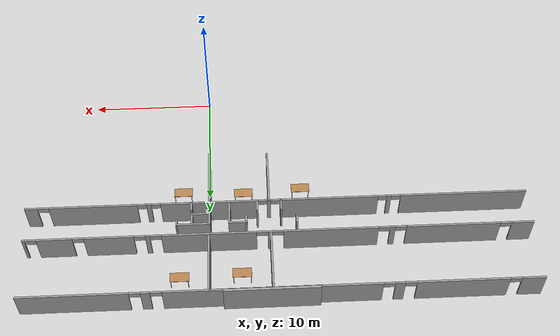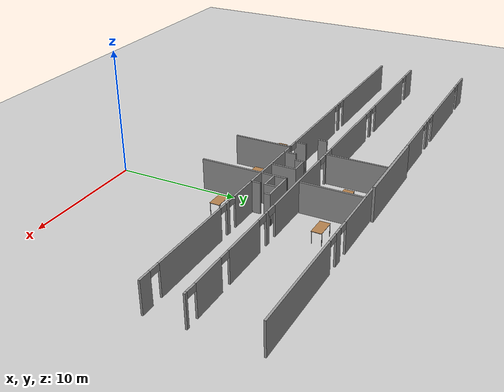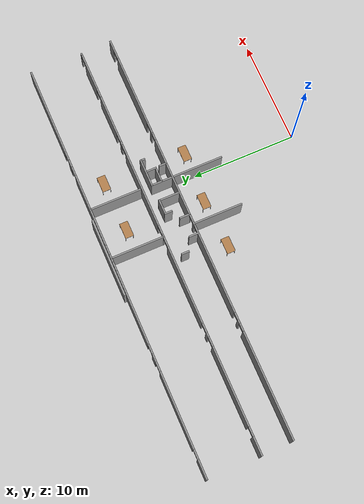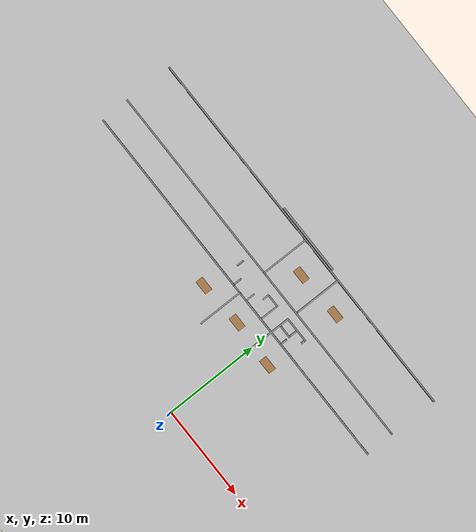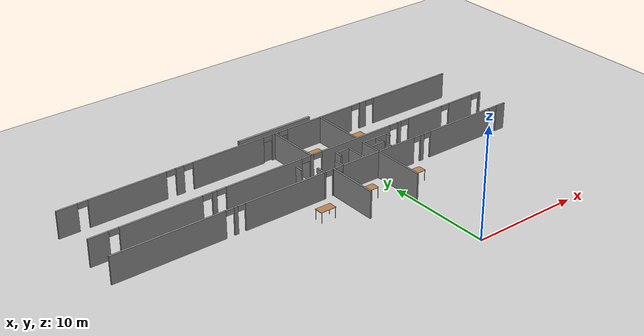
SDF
<sdf version="1.6">
 <world name="default">
  <model name="ground_plane">
   <static>1</static>
   <link name="link">
    <collision name="collision">
     <geometry><plane><normal>0 0 1</normal><size>100 100</size></plane></geometry>
     <surface><friction><ode><mu>100</mu><mu2>50</mu2></ode></friction></surface>
    </collision>
    <visual name="visual">
     <cast_shadows>0</cast_shadows>
     <geometry><plane><normal>0 0 1</normal><size>100 100</size></plane></geometry>
     <material>
      <script><uri>file://media/materials/scripts/gazebo.material</uri><name>Gazebo/Grey</name></script>
     </material>
    </visual>
   </link>
  </model>
  <model name="fin_se1f1.sdf">
   <pose>1.83798 -2.38449 0.2 0 -0 0</pose>
   <link name="Wall_102">
    <collision name="Wall_102_Collision">
     <geometry><box><size>0.75 0.15 2.5</size></box></geometry>
     <pose>0 0 1.25 0 -0 0</pose>
    </collision>
    <visual name="Wall_102_Visual">
     <pose>0 0 1.25 0 -0 0</pose>
     <geometry><box><size>0.75 0.15 2.5</size></box></geometry>
     <material>
      <script><uri>file://media/materials/scripts/gazebo.material</uri><name>Gazebo/Grey</name></script>
      <ambient>1 1 1 1</ambient>
     </material>
     <meta><layer>0</layer></meta>
    </visual>
    <pose>-8.86395 16.4896 0 0 0 -1.5708</pose>
   </link>
   <link name="Wall_108">
    <collision name="Wall_108_Collision">
     <geometry><box><size>7 0.15 2.5</size></box></geometry>
     <pose>0 0 1.25 0 -0 0</pose>
    </collision>
    <visual name="Wall_108_Visual">
     <pose>0 0 1.25 0 -0 0</pose>
     <geometry><box><size>7 0.15 2.5</size></box></geometry>
     <material>
      <script><uri>file://media/materials/scripts/gazebo.material</uri><name>Gazebo/Grey</name></script>
      <ambient>1 1 1 1</ambient>
     </material>
     <meta><layer>0</layer></meta>
    </visual>
    <pose>-1.87432 13.2994 0 0 -0 1.5708</pose>
   </link>
   <link name="Wall_109">
    <collision name="Wall_109_Collision">
     <geometry><box><size>2.75 0.15 2.5</size></box></geometry>
     <pose>0 0 1.25 0 -0 0</pose>
    </collision>
    <visual name="Wall_109_Visual">
     <pose>0 0 1.25 0 -0 0</pose>
     <geometry><box><size>2.75 0.15 2.5</size></box></geometry>
     <material>
      <script><uri>file://media/materials/scripts/gazebo.material</uri><name>Gazebo/Grey</name></script>
      <ambient>1 1 1 1</ambient>
     </material>
     <meta><layer>0</layer></meta>
    </visual>
    <pose>-0.574318 16.7244 0 0 -0 0</pose>
   </link>
   <link name="Wall_110">
    <collision name="Wall_110_Collision">
     <geometry><box><size>0.5 0.15 2.5</size></box></geometry>
     <pose>0 0 1.25 0 -0 0</pose>
    </collision>
    <visual name="Wall_110_Visual">
     <pose>0 0 1.25 0 -0 0</pose>
     <geometry><box><size>0.5 0.15 2.5</size></box></geometry>
     <material>
      <script><uri>file://media/materials/scripts/gazebo.material</uri><name>Gazebo/Grey</name></script>
      <ambient>1 1 1 1</ambient>
     </material>
     <meta><layer>0</layer></meta>
    </visual>
    <pose>0.725682 16.5494 0 0 0 -1.5708</pose>
   </link>
   <link name="Wall_112">
    <collision name="Wall_112_Collision">
     <geometry><box><size>4.75 0.15 2.5</size></box></geometry>
     <pose>0 0 1.25 0 -0 0</pose>
    </collision>
    <visual name="Wall_112_Visual">
     <pose>0 0 1.25 0 -0 0</pose>
     <geometry><box><size>4.75 0.15 2.5</size></box></geometry>
     <material>
      <script><uri>file://media/materials/scripts/gazebo.material</uri><name>Gazebo/Grey</name></script>
      <ambient>1 1 1 1</ambient>
     </material>
     <meta><layer>0</layer></meta>
    </visual>
    <pose>-6.68954 12.3361 0 0 0 -1.5708</pose>
   </link>
   <link name="Wall_132">
    <collision name="Wall_132_Collision">
     <geometry><box><size>0.75 0.15 2.5</size></box></geometry>
     <pose>0 0 1.25 0 -0 0</pose>
    </collision>
    <visual name="Wall_132_Visual">
     <pose>0 0 1.25 0 -0 0</pose>
     <geometry><box><size>0.75 0.15 2.5</size></box></geometry>
     <material>
      <script><uri>file://media/materials/scripts/gazebo.material</uri><name>Gazebo/Grey</name></script>
      <ambient>1 1 1 1</ambient>
     </material>
     <meta><layer>0</layer></meta>
    </visual>
    <pose>-4.81696 16.3807 0 0 -0 1.5708</pose>
   </link>
   <link name="Wall_133">
    <collision name="Wall_133_Collision">
     <geometry><box><size>1.5 0.15 2.5</size></box></geometry>
     <pose>0 0 1.25 0 -0 0</pose>
    </collision>
    <visual name="Wall_133_Visual">
     <pose>0 0 1.25 0 -0 0</pose>
     <geometry><box><size>1.5 0.15 2.5</size></box></geometry>
     <material>
      <script><uri>file://media/materials/scripts/gazebo.material</uri><name>Gazebo/Grey</name></script>
      <ambient>1 1 1 1</ambient>
     </material>
     <meta><layer>0</layer></meta>
    </visual>
    <pose>-4.14196 16.6807 0 0 -0 0</pose>
   </link>
   <link name="Wall_134">
    <collision name="Wall_134_Collision">
     <geometry><box><size>2 0.15 2.5</size></box></geometry>
     <pose>0 0 1.25 0 -0 0</pose>
    </collision>
    <visual name="Wall_134_Visual">
     <pose>0 0 1.25 0 -0 0</pose>
     <geometry><box><size>2 0.15 2.5</size></box></geometry>
     <material>
      <script><uri>file://media/materials/scripts/gazebo.material</uri><name>Gazebo/Grey</name></script>
      <ambient>1 1 1 1</ambient>
     </material>
     <meta><layer>0</layer></meta>
    </visual>
    <pose>-3.46696 15.7557 0 0 0 -1.5708</pose>
   </link>
   <link name="Wall_136">
    <collision name="Wall_136_Collision">
     <geometry><box><size>1 0.15 2.5</size></box></geometry>
     <pose>0 0 1.25 0 -0 0</pose>
    </collision>
    <visual name="Wall_136_Visual">
     <pose>0 0 1.25 0 -0 0</pose>
     <geometry><box><size>1 0.15 2.5</size></box></geometry>
     <material>
      <script><uri>file://media/materials/scripts/gazebo.material</uri><name>Gazebo/Grey</name></script>
      <ambient>1 1 1 1</ambient>
     </material>
     <meta><layer>0</layer></meta>
    </visual>
    <pose>-5.7265 15.1681 0 0 -0 1.5708</pose>
   </link>
   <link name="Wall_138">
    <collision name="Wall_138_Collision">
     <geometry><box><size>1 0.15 2.5</size></box></geometry>
     <pose>0 0 1.25 0 -0 0</pose>
    </collision>
    <visual name="Wall_138_Visual">
     <pose>0 0 1.25 0 -0 0</pose>
     <geometry><box><size>1 0.15 2.5</size></box></geometry>
     <material>
      <script><uri>file://media/materials/scripts/gazebo.material</uri><name>Gazebo/Grey</name></script>
      <ambient>1 1 1 1</ambient>
     </material>
     <meta><layer>0</layer></meta>
    </visual>
    <pose>-7.65259 15.1146 0 0 -0 1.5708</pose>
   </link>
   <link name="Wall_150">
    <collision name="Wall_150_Collision">
     <geometry><box><size>1.5 0.15 2.5</size></box></geometry>
     <pose>0 0 1.25 0 -0 0</pose>
    </collision>
    <visual name="Wall_150_Visual">
     <pose>0 0 1.25 0 -0 0</pose>
     <geometry><box><size>1.5 0.15 2.5</size></box></geometry>
     <material>
      <script><uri>file://media/materials/scripts/gazebo.material</uri><name>Gazebo/Grey</name></script>
      <ambient>1 1 1 1</ambient>
     </material>
     <meta><layer>0</layer></meta>
    </visual>
    <pose>-1.14582 15.7597 0 0 -0 0</pose>
   </link>
   <link name="Wall_151">
    <collision name="Wall_151_Collision">
     <geometry><box><size>1 0.15 2.5</size></box></geometry>
     <pose>0 0 1.25 0 -0 0</pose>
    </collision>
    <visual name="Wall_151_Visual">
     <pose>0 0 1.25 0 -0 0</pose>
     <geometry><box><size>1 0.15 2.5</size></box></geometry>
     <material>
      <script><uri>file://media/materials/scripts/gazebo.material</uri><name>Gazebo/Grey</name></script>
      <ambient>1 1 1 1</ambient>
     </material>
     <meta><layer>0</layer></meta>
    </visual>
    <pose>-0.470815 16.1847 0 0 -0 1.5708</pose>
   </link>
   <link name="Wall_153">
    <collision name="Wall_153_Collision">
     <geometry><box><size>0.75 0.15 2.5</size></box></geometry>
     <pose>0 0 1.25 0 -0 0</pose>
    </collision>
    <visual name="Wall_153_Visual">
     <pose>0 0 1.25 0 -0 0</pose>
     <geometry><box><size>0.75 0.15 2.5</size></box></geometry>
     <material>
      <script><uri>file://media/materials/scripts/gazebo.material</uri><name>Gazebo/Grey</name></script>
      <ambient>1 1 1 1</ambient>
     </material>
     <meta><layer>0</layer></meta>
    </visual>
    <pose>-0.42975 15.0316 0 0 0 -1.5708</pose>
   </link>
   <link name="Wall_22">
    <pose>-7.37457 22.7246 0 0 -0 3.14159</pose>
    <visual name="Wall_22_Visual_0">
     <pose>-15.9484 0 1.25 0 -0 0</pose>
     <geometry><box><size>8.60329 0.15 2.5</size></box></geometry>
     <material>
      <script><uri>file://media/materials/scripts/gazebo.material</uri><name>Gazebo/Grey</name></script>
      <ambient>1 1 1 1</ambient>
     </material>
     <meta><layer>0</layer></meta>
    </visual>
    <collision name="Wall_22_Collision_0">
     <geometry><box><size>8.60329 0.15 2.5</size></box></geometry>
     <pose>-15.9484 0 1.25 0 -0 0</pose>
    </collision>
    <visual name="Wall_22_Visual_1">
     <pose>-10.3821 0 1.25 0 -0 0</pose>
     <geometry><box><size>0.729199 0.15 2.5</size></box></geometry>
     <material>
      <script><uri>file://media/materials/scripts/gazebo.material</uri><name>Gazebo/Grey</name></script>
      <ambient>1 1 1 1</ambient>
     </material>
     <meta><layer>0</layer></meta>
    </visual>
    <collision name="Wall_22_Collision_1">
     <geometry><box><size>0.729199 0.15 2.5</size></box></geometry>
     <pose>-10.3821 0 1.25 0 -0 0</pose>
    </collision>
    <visual name="Wall_22_Visual_2">
     <pose>-5.52468 0 1.25 0 -0 0</pose>
     <geometry><box><size>7.18566 0.15 2.5</size></box></geometry>
     <material>
      <script><uri>file://media/materials/scripts/gazebo.material</uri><name>Gazebo/Grey</name></script>
      <ambient>1 1 1 1</ambient>
     </material>
     <meta><layer>0</layer></meta>
    </visual>
    <collision name="Wall_22_Collision_2">
     <geometry><box><size>7.18566 0.15 2.5</size></box></geometry>
     <pose>-5.52468 0 1.25 0 -0 0</pose>
    </collision>
    <visual name="Wall_22_Visual_3">
     <pose>-0.657198 0 1.25 0 -0 0</pose>
     <geometry><box><size>0.749313 0.15 2.5</size></box></geometry>
     <material>
      <script><uri>file://media/materials/scripts/gazebo.material</uri><name>Gazebo/Grey</name></script>
      <ambient>1 1 1 1</ambient>
     </material>
     <meta><layer>0</layer></meta>
    </visual>
    <collision name="Wall_22_Collision_3">
     <geometry><box><size>0.749313 0.15 2.5</size></box></geometry>
     <pose>-0.657198 0 1.25 0 -0 0</pose>
    </collision>
    <visual name="Wall_22_Visual_4">
     <pose>4.19017 0 1.25 0 -0 0</pose>
     <geometry><box><size>7.14543 0.15 2.5</size></box></geometry>
     <material>
      <script><uri>file://media/materials/scripts/gazebo.material</uri><name>Gazebo/Grey</name></script>
      <ambient>1 1 1 1</ambient>
     </material>
     <meta><layer>0</layer></meta>
    </visual>
    <collision name="Wall_22_Collision_4">
     <geometry><box><size>7.14543 0.15 2.5</size></box></geometry>
     <pose>4.19017 0 1.25 0 -0 0</pose>
    </collision>
    <visual name="Wall_22_Visual_5">
     <pose>9.0476 0 1.25 0 -0 0</pose>
     <geometry><box><size>0.769426 0.15 2.5</size></box></geometry>
     <material>
      <script><uri>file://media/materials/scripts/gazebo.material</uri><name>Gazebo/Grey</name></script>
      <ambient>1 1 1 1</ambient>
     </material>
     <meta><layer>0</layer></meta>
    </visual>
    <collision name="Wall_22_Collision_5">
     <geometry><box><size>0.769426 0.15 2.5</size></box></geometry>
     <pose>9.0476 0 1.25 0 -0 0</pose>
    </collision>
    <visual name="Wall_22_Visual_6">
     <pose>13.9151 0 1.25 0 -0 0</pose>
     <geometry><box><size>7.16554 0.15 2.5</size></box></geometry>
     <material>
      <script><uri>file://media/materials/scripts/gazebo.material</uri><name>Gazebo/Grey</name></script>
      <ambient>1 1 1 1</ambient>
     </material>
     <meta><layer>0</layer></meta>
    </visual>
    <collision name="Wall_22_Collision_6">
     <geometry><box><size>7.16554 0.15 2.5</size></box></geometry>
     <pose>13.9151 0 1.25 0 -0 0</pose>
    </collision>
    <visual name="Wall_22_Visual_7">
     <pose>19.3239 0 1.25 0 -0 0</pose>
     <geometry><box><size>1.85214 0.15 2.5</size></box></geometry>
     <material>
      <script><uri>file://media/materials/scripts/gazebo.material</uri><name>Gazebo/Grey</name></script>
      <ambient>1 1 1 1</ambient>
     </material>
     <meta><layer>0</layer></meta>
    </visual>
    <collision name="Wall_22_Collision_7">
     <geometry><box><size>1.85214 0.15 2.5</size></box></geometry>
     <pose>19.3239 0 1.25 0 -0 0</pose>
    </collision>
    <visual name="Wall_22_Visual_8">
     <pose>-11.1967 0 2.25 0 -0 0</pose>
     <geometry><box><size>0.9 0.15 0.5</size></box></geometry>
     <material>
      <script><uri>file://media/materials/scripts/gazebo.material</uri><name>Gazebo/Grey</name></script>
      <ambient>1 1 1 1</ambient>
     </material>
     <meta><layer>0</layer></meta>
    </visual>
    <collision name="Wall_22_Collision_8">
     <geometry><box><size>0.9 0.15 0.5</size></box></geometry>
     <pose>-11.1967 0 2.25 0 -0 0</pose>
    </collision>
    <visual name="Wall_22_Visual_9">
     <pose>-9.56751 0 2.25 0 -0 0</pose>
     <geometry><box><size>0.9 0.15 0.5</size></box></geometry>
     <material>
      <script><uri>file://media/materials/scripts/gazebo.material</uri><name>Gazebo/Grey</name></script>
      <ambient>1 1 1 1</ambient>
     </material>
     <meta><layer>0</layer></meta>
    </visual>
    <collision name="Wall_22_Collision_9">
     <geometry><box><size>0.9 0.15 0.5</size></box></geometry>
     <pose>-9.56751 0 2.25 0 -0 0</pose>
    </collision>
    <visual name="Wall_22_Visual_10">
     <pose>-1.48185 0 2.25 0 -0 0</pose>
     <geometry><box><size>0.9 0.15 0.5</size></box></geometry>
     <material>
      <script><uri>file://media/materials/scripts/gazebo.material</uri><name>Gazebo/Grey</name></script>
      <ambient>1 1 1 1</ambient>
     </material>
     <meta><layer>0</layer></meta>
    </visual>
    <collision name="Wall_22_Collision_10">
     <geometry><box><size>0.9 0.15 0.5</size></box></geometry>
     <pose>-1.48185 0 2.25 0 -0 0</pose>
    </collision>
    <visual name="Wall_22_Visual_11">
     <pose>0.167459 0 2.25 0 -0 0</pose>
     <geometry><box><size>0.9 0.15 0.5</size></box></geometry>
     <material>
      <script><uri>file://media/materials/scripts/gazebo.material</uri><name>Gazebo/Grey</name></script>
      <ambient>1 1 1 1</ambient>
     </material>
     <meta><layer>0</layer></meta>
    </visual>
    <collision name="Wall_22_Collision_11">
     <geometry><box><size>0.9 0.15 0.5</size></box></geometry>
     <pose>0.167459 0 2.25 0 -0 0</pose>
    </collision>
    <visual name="Wall_22_Visual_12">
     <pose>8.21289 0 2.25 0 -0 0</pose>
     <geometry><box><size>0.9 0.15 0.5</size></box></geometry>
     <material>
      <script><uri>file://media/materials/scripts/gazebo.material</uri><name>Gazebo/Grey</name></script>
      <ambient>1 1 1 1</ambient>
     </material>
     <meta><layer>0</layer></meta>
    </visual>
    <collision name="Wall_22_Collision_12">
     <geometry><box><size>0.9 0.15 0.5</size></box></geometry>
     <pose>8.21289 0 2.25 0 -0 0</pose>
    </collision>
    <visual name="Wall_22_Visual_13">
     <pose>9.88231 0 2.25 0 -0 0</pose>
     <geometry><box><size>0.9 0.15 0.5</size></box></geometry>
     <material>
      <script><uri>file://media/materials/scripts/gazebo.material</uri><name>Gazebo/Grey</name></script>
      <ambient>1 1 1 1</ambient>
     </material>
     <meta><layer>0</layer></meta>
    </visual>
    <collision name="Wall_22_Collision_13">
     <geometry><box><size>0.9 0.15 0.5</size></box></geometry>
     <pose>9.88231 0 2.25 0 -0 0</pose>
    </collision>
    <visual name="Wall_22_Visual_14">
     <pose>17.9479 0 2.25 0 -0 0</pose>
     <geometry><box><size>0.9 0.15 0.5</size></box></geometry>
     <material>
      <script><uri>file://media/materials/scripts/gazebo.material</uri><name>Gazebo/Grey</name></script>
      <ambient>1 1 1 1</ambient>
     </material>
     <meta><layer>0</layer></meta>
    </visual>
    <collision name="Wall_22_Collision_14">
     <geometry><box><size>0.9 0.15 0.5</size></box></geometry>
     <pose>17.9479 0 2.25 0 -0 0</pose>
    </collision>
   </link>
   <link name="Wall_69">
    <pose>-7.41686 17.6737 0 0 -0 0</pose>
    <visual name="Wall_69_Visual_0">
     <pose>-19.3631 0 1.25 0 -0 0</pose>
     <geometry><box><size>1.77375 0.15 2.5</size></box></geometry>
     <material>
      <script><uri>file://media/materials/scripts/gazebo.material</uri><name>Gazebo/Grey</name></script>
      <ambient>1 1 1 1</ambient>
     </material>
     <meta><layer>0</layer></meta>
    </visual>
    <collision name="Wall_69_Collision_0">
     <geometry><box><size>1.77375 0.15 2.5</size></box></geometry>
     <pose>-19.3631 0 1.25 0 -0 0</pose>
    </collision>
    <visual name="Wall_69_Visual_1">
     <pose>-13.8326 0 1.25 0 -0 0</pose>
     <geometry><box><size>7.48736 0.15 2.5</size></box></geometry>
     <material>
      <script><uri>file://media/materials/scripts/gazebo.material</uri><name>Gazebo/Grey</name></script>
      <ambient>1 1 1 1</ambient>
     </material>
     <meta><layer>0</layer></meta>
    </visual>
    <collision name="Wall_69_Collision_1">
     <geometry><box><size>7.48736 0.15 2.5</size></box></geometry>
     <pose>-13.8326 0 1.25 0 -0 0</pose>
    </collision>
    <visual name="Wall_69_Visual_2">
     <pose>-8.97514 0 1.25 0 -0 0</pose>
     <geometry><box><size>0.427496 0.15 2.5</size></box></geometry>
     <material>
      <script><uri>file://media/materials/scripts/gazebo.material</uri><name>Gazebo/Grey</name></script>
      <ambient>1 1 1 1</ambient>
     </material>
     <meta><layer>0</layer></meta>
    </visual>
    <collision name="Wall_69_Collision_2">
     <geometry><box><size>0.427496 0.15 2.5</size></box></geometry>
     <pose>-8.97514 0 1.25 0 -0 0</pose>
    </collision>
    <visual name="Wall_69_Visual_3">
     <pose>-4.08754 0 1.25 0 -0 0</pose>
     <geometry><box><size>7.5477 0.15 2.5</size></box></geometry>
     <material>
      <script><uri>file://media/materials/scripts/gazebo.material</uri><name>Gazebo/Grey</name></script>
      <ambient>1 1 1 1</ambient>
     </material>
     <meta><layer>0</layer></meta>
    </visual>
    <collision name="Wall_69_Collision_3">
     <geometry><box><size>7.5477 0.15 2.5</size></box></geometry>
     <pose>-4.08754 0 1.25 0 -0 0</pose>
    </collision>
    <visual name="Wall_69_Visual_4">
     <pose>0.749771 0 1.25 0 -0 0</pose>
     <geometry><box><size>0.326928 0.15 2.5</size></box></geometry>
     <material>
      <script><uri>file://media/materials/scripts/gazebo.material</uri><name>Gazebo/Grey</name></script>
      <ambient>1 1 1 1</ambient>
     </material>
     <meta><layer>0</layer></meta>
    </visual>
    <collision name="Wall_69_Collision_4">
     <geometry><box><size>0.326928 0.15 2.5</size></box></geometry>
     <pose>0.749771 0 1.25 0 -0 0</pose>
    </collision>
    <visual name="Wall_69_Visual_5">
     <pose>5.56697 0 1.25 0 -0 0</pose>
     <geometry><box><size>7.50747 0.15 2.5</size></box></geometry>
     <material>
      <script><uri>file://media/materials/scripts/gazebo.material</uri><name>Gazebo/Grey</name></script>
      <ambient>1 1 1 1</ambient>
     </material>
     <meta><layer>0</layer></meta>
    </visual>
    <collision name="Wall_69_Collision_5">
     <geometry><box><size>7.50747 0.15 2.5</size></box></geometry>
     <pose>5.56697 0 1.25 0 -0 0</pose>
    </collision>
    <visual name="Wall_69_Visual_6">
     <pose>10.4043 0 1.25 0 -0 0</pose>
     <geometry><box><size>0.367155 0.15 2.5</size></box></geometry>
     <material>
      <script><uri>file://media/materials/scripts/gazebo.material</uri><name>Gazebo/Grey</name></script>
      <ambient>1 1 1 1</ambient>
     </material>
     <meta><layer>0</layer></meta>
    </visual>
    <collision name="Wall_69_Collision_6">
     <geometry><box><size>0.367155 0.15 2.5</size></box></geometry>
     <pose>10.4043 0 1.25 0 -0 0</pose>
    </collision>
    <visual name="Wall_69_Visual_7">
     <pose>13.4515 0 1.25 0 -0 0</pose>
     <geometry><box><size>3.92726 0.15 2.5</size></box></geometry>
     <material>
      <script><uri>file://media/materials/scripts/gazebo.material</uri><name>Gazebo/Grey</name></script>
      <ambient>1 1 1 1</ambient>
     </material>
     <meta><layer>0</layer></meta>
    </visual>
    <collision name="Wall_69_Collision_7">
     <geometry><box><size>3.92726 0.15 2.5</size></box></geometry>
     <pose>13.4515 0 1.25 0 -0 0</pose>
    </collision>
    <visual name="Wall_69_Visual_8">
     <pose>17.7256 0 1.25 0 -0 0</pose>
     <geometry><box><size>2.82101 0.15 2.5</size></box></geometry>
     <material>
      <script><uri>file://media/materials/scripts/gazebo.material</uri><name>Gazebo/Grey</name></script>
      <ambient>1 1 1 1</ambient>
     </material>
     <meta><layer>0</layer></meta>
    </visual>
    <collision name="Wall_69_Collision_8">
     <geometry><box><size>2.82101 0.15 2.5</size></box></geometry>
     <pose>17.7256 0 1.25 0 -0 0</pose>
    </collision>
    <visual name="Wall_69_Visual_9">
     <pose>20.1431 0 1.25 0 -0 0</pose>
     <geometry><box><size>0.21387 0.15 2.5</size></box></geometry>
     <material>
      <script><uri>file://media/materials/scripts/gazebo.material</uri><name>Gazebo/Grey</name></script>
      <ambient>1 1 1 1</ambient>
     </material>
     <meta><layer>0</layer></meta>
    </visual>
    <collision name="Wall_69_Collision_9">
     <geometry><box><size>0.21387 0.15 2.5</size></box></geometry>
     <pose>20.1431 0 1.25 0 -0 0</pose>
    </collision>
    <visual name="Wall_69_Visual_10">
     <pose>-18.0262 0 2.25 0 -0 0</pose>
     <geometry><box><size>0.9 0.15 0.5</size></box></geometry>
     <material>
      <script><uri>file://media/materials/scripts/gazebo.material</uri><name>Gazebo/Grey</name></script>
      <ambient>1 1 1 1</ambient>
     </material>
     <meta><layer>0</layer></meta>
    </visual>
    <collision name="Wall_69_Collision_10">
     <geometry><box><size>0.9 0.15 0.5</size></box></geometry>
     <pose>-18.0262 0 2.25 0 -0 0</pose>
    </collision>
    <visual name="Wall_69_Visual_11">
     <pose>-9.63889 0 2.25 0 -0 0</pose>
     <geometry><box><size>0.9 0.15 0.5</size></box></geometry>
     <material>
      <script><uri>file://media/materials/scripts/gazebo.material</uri><name>Gazebo/Grey</name></script>
      <ambient>1 1 1 1</ambient>
     </material>
     <meta><layer>0</layer></meta>
    </visual>
    <collision name="Wall_69_Collision_11">
     <geometry><box><size>0.9 0.15 0.5</size></box></geometry>
     <pose>-9.63889 0 2.25 0 -0 0</pose>
    </collision>
    <visual name="Wall_69_Visual_12">
     <pose>-8.31139 0 2.25 0 -0 0</pose>
     <geometry><box><size>0.9 0.15 0.5</size></box></geometry>
     <material>
      <script><uri>file://media/materials/scripts/gazebo.material</uri><name>Gazebo/Grey</name></script>
      <ambient>1 1 1 1</ambient>
     </material>
     <meta><layer>0</layer></meta>
    </visual>
    <collision name="Wall_69_Collision_12">
     <geometry><box><size>0.9 0.15 0.5</size></box></geometry>
     <pose>-8.31139 0 2.25 0 -0 0</pose>
    </collision>
    <visual name="Wall_69_Visual_13">
     <pose>0.136307 0 2.25 0 -0 0</pose>
     <geometry><box><size>0.9 0.15 0.5</size></box></geometry>
     <material>
      <script><uri>file://media/materials/scripts/gazebo.material</uri><name>Gazebo/Grey</name></script>
      <ambient>1 1 1 1</ambient>
     </material>
     <meta><layer>0</layer></meta>
    </visual>
    <collision name="Wall_69_Collision_13">
     <geometry><box><size>0.9 0.15 0.5</size></box></geometry>
     <pose>0.136307 0 2.25 0 -0 0</pose>
    </collision>
    <visual name="Wall_69_Visual_14">
     <pose>1.36323 0 2.25 0 -0 0</pose>
     <geometry><box><size>0.9 0.15 0.5</size></box></geometry>
     <material>
      <script><uri>file://media/materials/scripts/gazebo.material</uri><name>Gazebo/Grey</name></script>
      <ambient>1 1 1 1</ambient>
     </material>
     <meta><layer>0</layer></meta>
    </visual>
    <collision name="Wall_69_Collision_14">
     <geometry><box><size>0.9 0.15 0.5</size></box></geometry>
     <pose>1.36323 0 2.25 0 -0 0</pose>
    </collision>
    <visual name="Wall_69_Visual_15">
     <pose>9.77071 0 2.25 0 -0 0</pose>
     <geometry><box><size>0.9 0.15 0.5</size></box></geometry>
     <material>
      <script><uri>file://media/materials/scripts/gazebo.material</uri><name>Gazebo/Grey</name></script>
      <ambient>1 1 1 1</ambient>
     </material>
     <meta><layer>0</layer></meta>
    </visual>
    <collision name="Wall_69_Collision_15">
     <geometry><box><size>0.9 0.15 0.5</size></box></geometry>
     <pose>9.77071 0 2.25 0 -0 0</pose>
    </collision>
    <visual name="Wall_69_Visual_16">
     <pose>11.0379 0 2.25 0 -0 0</pose>
     <geometry><box><size>0.9 0.15 0.5</size></box></geometry>
     <material>
      <script><uri>file://media/materials/scripts/gazebo.material</uri><name>Gazebo/Grey</name></script>
      <ambient>1 1 1 1</ambient>
     </material>
     <meta><layer>0</layer></meta>
    </visual>
    <collision name="Wall_69_Collision_16">
     <geometry><box><size>0.9 0.15 0.5</size></box></geometry>
     <pose>11.0379 0 2.25 0 -0 0</pose>
    </collision>
    <visual name="Wall_69_Visual_17">
     <pose>15.8651 0 2.25 0 -0 0</pose>
     <geometry><box><size>0.9 0.15 0.5</size></box></geometry>
     <material>
      <script><uri>file://media/materials/scripts/gazebo.material</uri><name>Gazebo/Grey</name></script>
      <ambient>1 1 1 1</ambient>
     </material>
     <meta><layer>0</layer></meta>
    </visual>
    <collision name="Wall_69_Collision_17">
     <geometry><box><size>0.9 0.15 0.5</size></box></geometry>
     <pose>15.8651 0 2.25 0 -0 0</pose>
    </collision>
    <visual name="Wall_69_Visual_18">
     <pose>19.5861 0 2.25 0 -0 0</pose>
     <geometry><box><size>0.9 0.15 0.5</size></box></geometry>
     <material>
      <script><uri>file://media/materials/scripts/gazebo.material</uri><name>Gazebo/Grey</name></script>
      <ambient>1 1 1 1</ambient>
     </material>
     <meta><layer>0</layer></meta>
    </visual>
    <collision name="Wall_69_Collision_18">
     <geometry><box><size>0.9 0.15 0.5</size></box></geometry>
     <pose>19.5861 0 2.25 0 -0 0</pose>
    </collision>
   </link>
   <link name="Wall_78">
    <collision name="Wall_78_Collision">
     <geometry><box><size>5 0.15 2.5</size></box></geometry>
     <pose>0 0 1.25 0 -0 0</pose>
    </collision>
    <visual name="Wall_78_Visual">
     <pose>0 0 1.25 0 -0 0</pose>
     <geometry><box><size>5 0.15 2.5</size></box></geometry>
     <material>
      <script><uri>file://media/materials/scripts/gazebo.material</uri><name>Gazebo/Grey</name></script>
      <ambient>1 1 1 1</ambient>
     </material>
     <meta><layer>0</layer></meta>
    </visual>
    <pose>-1.81168 20.294 0 0 0 -1.5708</pose>
   </link>
   <link name="Wall_80">
    <collision name="Wall_80_Collision">
     <geometry><box><size>5 0.15 2.5</size></box></geometry>
     <pose>0 0 1.25 0 -0 0</pose>
    </collision>
    <visual name="Wall_80_Visual">
     <pose>0 0 1.25 0 -0 0</pose>
     <geometry><box><size>5 0.15 2.5</size></box></geometry>
     <material>
      <script><uri>file://media/materials/scripts/gazebo.material</uri><name>Gazebo/Grey</name></script>
      <ambient>1 1 1 1</ambient>
     </material>
     <meta><layer>0</layer></meta>
    </visual>
    <pose>-6.73391 20.1709 0 0 0 -1.5708</pose>
   </link>
   <link name="Wall_88">
    <pose>-7.32702 14.6896 0 0 -0 0</pose>
    <visual name="Wall_88_Visual_0">
     <pose>-15.144 0 1.25 0 -0 0</pose>
     <geometry><box><size>10.2121 0.15 2.5</size></box></geometry>
     <material>
      <script><uri>file://media/materials/scripts/gazebo.material</uri><name>Gazebo/Grey</name></script>
      <ambient>1 1 1 1</ambient>
     </material>
     <meta><layer>0</layer></meta>
    </visual>
    <collision name="Wall_88_Collision_0">
     <geometry><box><size>10.2121 0.15 2.5</size></box></geometry>
     <pose>-15.144 0 1.25 0 -0 0</pose>
    </collision>
    <visual name="Wall_88_Visual_1">
     <pose>-9.0851 0 1.25 0 -0 0</pose>
     <geometry><box><size>0.347043 0.15 2.5</size></box></geometry>
     <material>
      <script><uri>file://media/materials/scripts/gazebo.material</uri><name>Gazebo/Grey</name></script>
      <ambient>1 1 1 1</ambient>
     </material>
     <meta><layer>0</layer></meta>
    </visual>
    <collision name="Wall_88_Collision_1">
     <geometry><box><size>0.347043 0.15 2.5</size></box></geometry>
     <pose>-9.0851 0 1.25 0 -0 0</pose>
    </collision>
    <visual name="Wall_88_Visual_2">
     <pose>-4.24778 0 1.25 0 -0 0</pose>
     <geometry><box><size>7.92986 0.15 2.5</size></box></geometry>
     <material>
      <script><uri>file://media/materials/scripts/gazebo.material</uri><name>Gazebo/Grey</name></script>
      <ambient>1 1 1 1</ambient>
     </material>
     <meta><layer>0</layer></meta>
    </visual>
    <collision name="Wall_88_Collision_2">
     <geometry><box><size>7.92986 0.15 2.5</size></box></geometry>
     <pose>-4.24778 0 1.25 0 -0 0</pose>
    </collision>
    <visual name="Wall_88_Visual_3">
     <pose>0.644846 0 1.25 0 -0 0</pose>
     <geometry><box><size>0.296758 0.15 2.5</size></box></geometry>
     <material>
      <script><uri>file://media/materials/scripts/gazebo.material</uri><name>Gazebo/Grey</name></script>
      <ambient>1 1 1 1</ambient>
     </material>
     <meta><layer>0</layer></meta>
    </visual>
    <collision name="Wall_88_Collision_3">
     <geometry><box><size>0.296758 0.15 2.5</size></box></geometry>
     <pose>0.644846 0 1.25 0 -0 0</pose>
    </collision>
    <visual name="Wall_88_Visual_4">
     <pose>5.45199 0 1.25 0 -0 0</pose>
     <geometry><box><size>7.83935 0.15 2.5</size></box></geometry>
     <material>
      <script><uri>file://media/materials/scripts/gazebo.material</uri><name>Gazebo/Grey</name></script>
      <ambient>1 1 1 1</ambient>
     </material>
     <meta><layer>0</layer></meta>
    </visual>
    <collision name="Wall_88_Collision_4">
     <geometry><box><size>7.83935 0.15 2.5</size></box></geometry>
     <pose>5.45199 0 1.25 0 -0 0</pose>
    </collision>
    <visual name="Wall_88_Visual_5">
     <pose>10.3044 0 1.25 0 -0 0</pose>
     <geometry><box><size>0.387269 0.15 2.5</size></box></geometry>
     <material>
      <script><uri>file://media/materials/scripts/gazebo.material</uri><name>Gazebo/Grey</name></script>
      <ambient>1 1 1 1</ambient>
     </material>
     <meta><layer>0</layer></meta>
    </visual>
    <collision name="Wall_88_Collision_5">
     <geometry><box><size>0.387269 0.15 2.5</size></box></geometry>
     <pose>10.3044 0 1.25 0 -0 0</pose>
    </collision>
    <visual name="Wall_88_Visual_6">
     <pose>14.7797 0 1.25 0 -0 0</pose>
     <geometry><box><size>7.08509 0.15 2.5</size></box></geometry>
     <material>
      <script><uri>file://media/materials/scripts/gazebo.material</uri><name>Gazebo/Grey</name></script>
      <ambient>1 1 1 1</ambient>
     </material>
     <meta><layer>0</layer></meta>
    </visual>
    <collision name="Wall_88_Collision_6">
     <geometry><box><size>7.08509 0.15 2.5</size></box></geometry>
     <pose>14.7797 0 1.25 0 -0 0</pose>
    </collision>
    <visual name="Wall_88_Visual_7">
     <pose>19.7361 0 1.25 0 -0 0</pose>
     <geometry><box><size>1.0278 0.15 2.5</size></box></geometry>
     <material>
      <script><uri>file://media/materials/scripts/gazebo.material</uri><name>Gazebo/Grey</name></script>
      <ambient>1 1 1 1</ambient>
     </material>
     <meta><layer>0</layer></meta>
    </visual>
    <collision name="Wall_88_Collision_7">
     <geometry><box><size>1.0278 0.15 2.5</size></box></geometry>
     <pose>19.7361 0 1.25 0 -0 0</pose>
    </collision>
    <visual name="Wall_88_Visual_8">
     <pose>-9.64827 0 2.25 0 -0 0</pose>
     <geometry><box><size>0.779319 0.15 0.5</size></box></geometry>
     <material>
      <script><uri>file://media/materials/scripts/gazebo.material</uri><name>Gazebo/Grey</name></script>
      <ambient>1 1 1 1</ambient>
     </material>
     <meta><layer>0</layer></meta>
    </visual>
    <collision name="Wall_88_Collision_8">
     <geometry><box><size>0.779319 0.15 0.5</size></box></geometry>
     <pose>-9.64827 0 2.25 0 -0 0</pose>
    </collision>
    <visual name="Wall_88_Visual_9">
     <pose>-8.56214 0 2.25 0 -0 0</pose>
     <geometry><box><size>0.698864 0.15 0.5</size></box></geometry>
     <material>
      <script><uri>file://media/materials/scripts/gazebo.material</uri><name>Gazebo/Grey</name></script>
      <ambient>1 1 1 1</ambient>
     </material>
     <meta><layer>0</layer></meta>
    </visual>
    <collision name="Wall_88_Collision_9">
     <geometry><box><size>0.698864 0.15 0.5</size></box></geometry>
     <pose>-8.56214 0 2.25 0 -0 0</pose>
    </collision>
    <visual name="Wall_88_Visual_10">
     <pose>0.106808 0 2.25 0 -0 0</pose>
     <geometry><box><size>0.779319 0.15 0.5</size></box></geometry>
     <material>
      <script><uri>file://media/materials/scripts/gazebo.material</uri><name>Gazebo/Grey</name></script>
      <ambient>1 1 1 1</ambient>
     </material>
     <meta><layer>0</layer></meta>
    </visual>
    <collision name="Wall_88_Collision_10">
     <geometry><box><size>0.779319 0.15 0.5</size></box></geometry>
     <pose>0.106808 0 2.25 0 -0 0</pose>
    </collision>
    <visual name="Wall_88_Visual_11">
     <pose>1.16277 0 2.25 0 -0 0</pose>
     <geometry><box><size>0.739091 0.15 0.5</size></box></geometry>
     <material>
      <script><uri>file://media/materials/scripts/gazebo.material</uri><name>Gazebo/Grey</name></script>
      <ambient>1 1 1 1</ambient>
     </material>
     <meta><layer>0</layer></meta>
    </visual>
    <collision name="Wall_88_Collision_11">
     <geometry><box><size>0.739091 0.15 0.5</size></box></geometry>
     <pose>1.16277 0 2.25 0 -0 0</pose>
    </collision>
    <visual name="Wall_88_Visual_12">
     <pose>9.74121 0 2.25 0 -0 0</pose>
     <geometry><box><size>0.739091 0.15 0.5</size></box></geometry>
     <material>
      <script><uri>file://media/materials/scripts/gazebo.material</uri><name>Gazebo/Grey</name></script>
      <ambient>1 1 1 1</ambient>
     </material>
     <meta><layer>0</layer></meta>
    </visual>
    <collision name="Wall_88_Collision_12">
     <geometry><box><size>0.739091 0.15 0.5</size></box></geometry>
     <pose>9.74121 0 2.25 0 -0 0</pose>
    </collision>
    <visual name="Wall_88_Visual_13">
     <pose>10.8676 0 2.25 0 -0 0</pose>
     <geometry><box><size>0.739091 0.15 0.5</size></box></geometry>
     <material>
      <script><uri>file://media/materials/scripts/gazebo.material</uri><name>Gazebo/Grey</name></script>
      <ambient>1 1 1 1</ambient>
     </material>
     <meta><layer>0</layer></meta>
    </visual>
    <collision name="Wall_88_Collision_13">
     <geometry><box><size>0.739091 0.15 0.5</size></box></geometry>
     <pose>10.8676 0 2.25 0 -0 0</pose>
    </collision>
    <visual name="Wall_88_Visual_14">
     <pose>18.7722 0 2.25 0 -0 0</pose>
     <geometry><box><size>0.9 0.15 0.5</size></box></geometry>
     <material>
      <script><uri>file://media/materials/scripts/gazebo.material</uri><name>Gazebo/Grey</name></script>
      <ambient>1 1 1 1</ambient>
     </material>
     <meta><layer>0</layer></meta>
    </visual>
    <collision name="Wall_88_Collision_14">
     <geometry><box><size>0.9 0.15 0.5</size></box></geometry>
     <pose>18.7722 0 2.25 0 -0 0</pose>
    </collision>
   </link>
   <static>1</static>
  </model>
  <model name="table_4">
   <static>1</static>
   <link name="link">
    <collision name="surface">
     <pose>0 0 1 0 -0 0</pose>
     <geometry><box><size>1.5 0.8 0.03</size></box></geometry>
     <surface><friction><ode><mu>0.6</mu><mu2>0.6</mu2></ode></friction></surface>
    </collision>
    <visual name="visual1">
     <pose>0 0 1 0 -0 0</pose>
     <geometry><box><size>1.5 0.8 0.03</size></box></geometry>
     <material>
      <script><uri>file://media/materials/scripts/gazebo.material</uri><name>Gazebo/Wood</name></script>
     </material>
    </visual>
    <collision name="front_left_leg">
     <pose>0.68 0.38 0.5 0 -0 0</pose>
     <geometry><cylinder><radius>0.02</radius><length>1</length></cylinder></geometry>
    </collision>
    <visual name="front_left_leg">
     <pose>0.68 0.38 0.5 0 -0 0</pose>
     <geometry><cylinder><radius>0.02</radius><length>1</length></cylinder></geometry>
     <material>
      <script><uri>file://media/materials/scripts/gazebo.material</uri><name>Gazebo/Grey</name></script>
     </material>
    </visual>
    <collision name="front_right_leg">
     <pose>0.68 -0.38 0.5 0 -0 0</pose>
     <geometry><cylinder><radius>0.02</radius><length>1</length></cylinder></geometry>
    </collision>
    <visual name="front_right_leg">
     <pose>0.68 -0.38 0.5 0 -0 0</pose>
     <geometry><cylinder><radius>0.02</radius><length>1</length></cylinder></geometry>
     <material>
      <script><uri>file://media/materials/scripts/gazebo.material</uri><name>Gazebo/Grey</name></script>
     </material>
    </visual>
    <collision name="back_right_leg">
     <pose>-0.68 -0.38 0.5 0 -0 0</pose>
     <geometry><cylinder><radius>0.02</radius><length>1</length></cylinder></geometry>
    </collision>
    <visual name="back_right_leg">
     <pose>-0.68 -0.38 0.5 0 -0 0</pose>
     <geometry><cylinder><radius>0.02</radius><length>1</length></cylinder></geometry>
     <material>
      <script><uri>file://media/materials/scripts/gazebo.material</uri><name>Gazebo/Grey</name></script>
     </material>
    </visual>
    <collision name="back_left_leg">
     <pose>-0.68 0.38 0.5 0 -0 0</pose>
     <geometry><cylinder><radius>0.02</radius><length>1</length></cylinder></geometry>
    </collision>
    <visual name="back_left_leg">
     <pose>-0.68 0.38 0.5 0 -0 0</pose>
     <geometry><cylinder><radius>0.02</radius><length>1</length></cylinder></geometry>
     <material>
      <script><uri>file://media/materials/scripts/gazebo.material</uri><name>Gazebo/Grey</name></script>
     </material>
    </visual>
   </link>
   <pose>-7.5086 10.0383 0 0 -0 0</pose>
  </model>
  <model name="table_6">
   <static>1</static>
   <link name="link">
    <collision name="surface">
     <pose>0 0 1 0 -0 0</pose>
     <geometry><box><size>1.5 0.8 0.03</size></box></geometry>
     <surface><friction><ode><mu>0.6</mu><mu2>0.6</mu2></ode></friction></surface>
    </collision>
    <visual name="visual1">
     <pose>0 0 1 0 -0 0</pose>
     <geometry><box><size>1.5 0.8 0.03</size></box></geometry>
     <material>
      <script><uri>file://media/materials/scripts/gazebo.material</uri><name>Gazebo/Wood</name></script>
     </material>
    </visual>
    <collision name="front_left_leg">
     <pose>0.68 0.38 0.5 0 -0 0</pose>
     <geometry><cylinder><radius>0.02</radius><length>1</length></cylinder></geometry>
    </collision>
    <visual name="front_left_leg">
     <pose>0.68 0.38 0.5 0 -0 0</pose>
     <geometry><cylinder><radius>0.02</radius><length>1</length></cylinder></geometry>
     <material>
      <script><uri>file://media/materials/scripts/gazebo.material</uri><name>Gazebo/Grey</name></script>
     </material>
    </visual>
    <collision name="front_right_leg">
     <pose>0.68 -0.38 0.5 0 -0 0</pose>
     <geometry><cylinder><radius>0.02</radius><length>1</length></cylinder></geometry>
    </collision>
    <visual name="front_right_leg">
     <pose>0.68 -0.38 0.5 0 -0 0</pose>
     <geometry><cylinder><radius>0.02</radius><length>1</length></cylinder></geometry>
     <material>
      <script><uri>file://media/materials/scripts/gazebo.material</uri><name>Gazebo/Grey</name></script>
     </material>
    </visual>
    <collision name="back_right_leg">
     <pose>-0.68 -0.38 0.5 0 -0 0</pose>
     <geometry><cylinder><radius>0.02</radius><length>1</length></cylinder></geometry>
    </collision>
    <visual name="back_right_leg">
     <pose>-0.68 -0.38 0.5 0 -0 0</pose>
     <geometry><cylinder><radius>0.02</radius><length>1</length></cylinder></geometry>
     <material>
      <script><uri>file://media/materials/scripts/gazebo.material</uri><name>Gazebo/Grey</name></script>
     </material>
    </visual>
    <collision name="back_left_leg">
     <pose>-0.68 0.38 0.5 0 -0 0</pose>
     <geometry><cylinder><radius>0.02</radius><length>1</length></cylinder></geometry>
    </collision>
    <visual name="back_left_leg">
     <pose>-0.68 0.38 0.5 0 -0 0</pose>
     <geometry><cylinder><radius>0.02</radius><length>1</length></cylinder></geometry>
     <material>
      <script><uri>file://media/materials/scripts/gazebo.material</uri><name>Gazebo/Grey</name></script>
     </material>
    </visual>
   </link>
   <pose>-2.52875 17.9414 0 0 -0 0</pose>
  </model>
  <model name="table_7">
   <static>1</static>
   <link name="link">
    <collision name="surface">
     <pose>0 0 1 0 -0 0</pose>
     <geometry><box><size>1.5 0.8 0.03</size></box></geometry>
     <surface><friction><ode><mu>0.6</mu><mu2>0.6</mu2></ode></friction></surface>
    </collision>
    <visual name="visual1">
     <pose>0 0 1 0 -0 0</pose>
     <geometry><box><size>1.5 0.8 0.03</size></box></geometry>
     <material>
      <script><uri>file://media/materials/scripts/gazebo.material</uri><name>Gazebo/Wood</name></script>
     </material>
    </visual>
    <collision name="front_left_leg">
     <pose>0.68 0.38 0.5 0 -0 0</pose>
     <geometry><cylinder><radius>0.02</radius><length>1</length></cylinder></geometry>
    </collision>
    <visual name="front_left_leg">
     <pose>0.68 0.38 0.5 0 -0 0</pose>
     <geometry><cylinder><radius>0.02</radius><length>1</length></cylinder></geometry>
     <material>
      <script><uri>file://media/materials/scripts/gazebo.material</uri><name>Gazebo/Grey</name></script>
     </material>
    </visual>
    <collision name="front_right_leg">
     <pose>0.68 -0.38 0.5 0 -0 0</pose>
     <geometry><cylinder><radius>0.02</radius><length>1</length></cylinder></geometry>
    </collision>
    <visual name="front_right_leg">
     <pose>0.68 -0.38 0.5 0 -0 0</pose>
     <geometry><cylinder><radius>0.02</radius><length>1</length></cylinder></geometry>
     <material>
      <script><uri>file://media/materials/scripts/gazebo.material</uri><name>Gazebo/Grey</name></script>
     </material>
    </visual>
    <collision name="back_right_leg">
     <pose>-0.68 -0.38 0.5 0 -0 0</pose>
     <geometry><cylinder><radius>0.02</radius><length>1</length></cylinder></geometry>
    </collision>
    <visual name="back_right_leg">
     <pose>-0.68 -0.38 0.5 0 -0 0</pose>
     <geometry><cylinder><radius>0.02</radius><length>1</length></cylinder></geometry>
     <material>
      <script><uri>file://media/materials/scripts/gazebo.material</uri><name>Gazebo/Grey</name></script>
     </material>
    </visual>
    <collision name="back_left_leg">
     <pose>-0.68 0.38 0.5 0 -0 0</pose>
     <geometry><cylinder><radius>0.02</radius><length>1</length></cylinder></geometry>
    </collision>
    <visual name="back_left_leg">
     <pose>-0.68 0.38 0.5 0 -0 0</pose>
     <geometry><cylinder><radius>0.02</radius><length>1</length></cylinder></geometry>
     <material>
      <script><uri>file://media/materials/scripts/gazebo.material</uri><name>Gazebo/Grey</name></script>
     </material>
    </visual>
   </link>
   <pose>-2.78705 10.3298 0 0 -0 0</pose>
  </model>
  <model name="table_8">
   <static>1</static>
   <link name="link">
    <collision name="surface">
     <pose>0 0 1 0 -0 0</pose>
     <geometry><box><size>1.5 0.8 0.03</size></box></geometry>
     <surface><friction><ode><mu>0.6</mu><mu2>0.6</mu2></ode></friction></surface>
    </collision>
    <visual name="visual1">
     <pose>0 0 1 0 -0 0</pose>
     <geometry><box><size>1.5 0.8 0.03</size></box></geometry>
     <material>
      <script><uri>file://media/materials/scripts/gazebo.material</uri><name>Gazebo/Wood</name></script>
     </material>
    </visual>
    <collision name="front_left_leg">
     <pose>0.68 0.38 0.5 0 -0 0</pose>
     <geometry><cylinder><radius>0.02</radius><length>1</length></cylinder></geometry>
    </collision>
    <visual name="front_left_leg">
     <pose>0.68 0.38 0.5 0 -0 0</pose>
     <geometry><cylinder><radius>0.02</radius><length>1</length></cylinder></geometry>
     <material>
      <script><uri>file://media/materials/scripts/gazebo.material</uri><name>Gazebo/Grey</name></script>
     </material>
    </visual>
    <collision name="front_right_leg">
     <pose>0.68 -0.38 0.5 0 -0 0</pose>
     <geometry><cylinder><radius>0.02</radius><length>1</length></cylinder></geometry>
    </collision>
    <visual name="front_right_leg">
     <pose>0.68 -0.38 0.5 0 -0 0</pose>
     <geometry><cylinder><radius>0.02</radius><length>1</length></cylinder></geometry>
     <material>
      <script><uri>file://media/materials/scripts/gazebo.material</uri><name>Gazebo/Grey</name></script>
     </material>
    </visual>
    <collision name="back_right_leg">
     <pose>-0.68 -0.38 0.5 0 -0 0</pose>
     <geometry><cylinder><radius>0.02</radius><length>1</length></cylinder></geometry>
    </collision>
    <visual name="back_right_leg">
     <pose>-0.68 -0.38 0.5 0 -0 0</pose>
     <geometry><cylinder><radius>0.02</radius><length>1</length></cylinder></geometry>
     <material>
      <script><uri>file://media/materials/scripts/gazebo.material</uri><name>Gazebo/Grey</name></script>
     </material>
    </visual>
    <collision name="back_left_leg">
     <pose>-0.68 0.38 0.5 0 -0 0</pose>
     <geometry><cylinder><radius>0.02</radius><length>1</length></cylinder></geometry>
    </collision>
    <visual name="back_left_leg">
     <pose>-0.68 0.38 0.5 0 -0 0</pose>
     <geometry><cylinder><radius>0.02</radius><length>1</length></cylinder></geometry>
     <material>
      <script><uri>file://media/materials/scripts/gazebo.material</uri><name>Gazebo/Grey</name></script>
     </material>
    </visual>
   </link>
   <pose>2.18282 10.0913 0 0 -0 0</pose>
  </model>
  <model name="table_9">
   <static>1</static>
   <link name="link">
    <collision name="surface">
     <pose>0 0 1 0 -0 0</pose>
     <geometry><box><size>1.5 0.8 0.03</size></box></geometry>
     <surface><friction><ode><mu>0.6</mu><mu2>0.6</mu2></ode></friction></surface>
    </collision>
    <visual name="visual1">
     <pose>0 0 1 0 -0 0</pose>
     <geometry><box><size>1.5 0.8 0.03</size></box></geometry>
     <material>
      <script><uri>file://media/materials/scripts/gazebo.material</uri><name>Gazebo/Wood</name></script>
     </material>
    </visual>
    <collision name="front_left_leg">
     <pose>0.68 0.38 0.5 0 -0 0</pose>
     <geometry><cylinder><radius>0.02</radius><length>1</length></cylinder></geometry>
    </collision>
    <visual name="front_left_leg">
     <pose>0.68 0.38 0.5 0 -0 0</pose>
     <geometry><cylinder><radius>0.02</radius><length>1</length></cylinder></geometry>
     <material>
      <script><uri>file://media/materials/scripts/gazebo.material</uri><name>Gazebo/Grey</name></script>
     </material>
    </visual>
    <collision name="front_right_leg">
     <pose>0.68 -0.38 0.5 0 -0 0</pose>
     <geometry><cylinder><radius>0.02</radius><length>1</length></cylinder></geometry>
    </collision>
    <visual name="front_right_leg">
     <pose>0.68 -0.38 0.5 0 -0 0</pose>
     <geometry><cylinder><radius>0.02</radius><length>1</length></cylinder></geometry>
     <material>
      <script><uri>file://media/materials/scripts/gazebo.material</uri><name>Gazebo/Grey</name></script>
     </material>
    </visual>
    <collision name="back_right_leg">
     <pose>-0.68 -0.38 0.5 0 -0 0</pose>
     <geometry><cylinder><radius>0.02</radius><length>1</length></cylinder></geometry>
    </collision>
    <visual name="back_right_leg">
     <pose>-0.68 -0.38 0.5 0 -0 0</pose>
     <geometry><cylinder><radius>0.02</radius><length>1</length></cylinder></geometry>
     <material>
      <script><uri>file://media/materials/scripts/gazebo.material</uri><name>Gazebo/Grey</name></script>
     </material>
    </visual>
    <collision name="back_left_leg">
     <pose>-0.68 0.38 0.5 0 -0 0</pose>
     <geometry><cylinder><radius>0.02</radius><length>1</length></cylinder></geometry>
    </collision>
    <visual name="back_left_leg">
     <pose>-0.68 0.38 0.5 0 -0 0</pose>
     <geometry><cylinder><radius>0.02</radius><length>1</length></cylinder></geometry>
     <material>
      <script><uri>file://media/materials/scripts/gazebo.material</uri><name>Gazebo/Grey</name></script>
     </material>
    </visual>
   </link>
   <pose>2.40774 18.1462 0 0 -0 0</pose>
  </model>
  <model name="grey_wall_4">
   <static>1</static>
   <link name="link">
    <pose>0 0 1.4 0 -0 0</pose>
    <collision name="collision"><geometry><box><size>7.5 0.2 2.8</size></box></geometry></collision>
    <visual name="visual">
     <cast_shadows>0</cast_shadows>
     <geometry><box><size>7.5 0.2 2.8</size></box></geometry>
     <material>
      <script>
       <uri>model://grey_wall/materials/scripts</uri>
       <uri>model://grey_wall/materials/textures</uri>
       <name>vrc/grey_wall</name>
      </script>
     </material>
    </visual>
   </link>
   <pose>-4.80156 20.5615 0.2 0 -0 0</pose>
  </model>
 </world>
</sdf>
